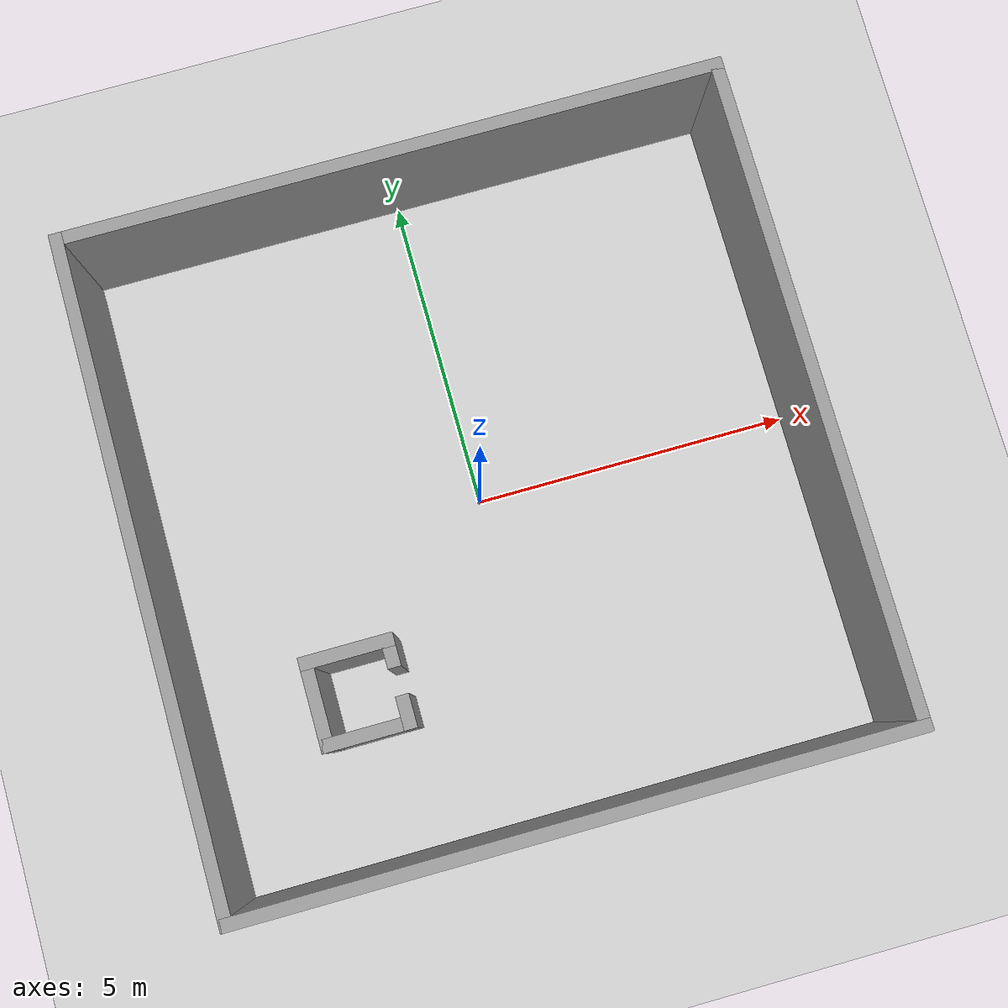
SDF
<?xml version="1.0" ?>
<!-- Reference from https://classic.gazebosim.org/tutorials?tut=guided_i1&cat= -->
<sdf version="1.5">
  <world name="default">

    <!-- A global light source -->
    <include>
      <uri>model://sun</uri>
    </include>

    <!-- A ground plane -->
    <include>
      <uri>model://ground_plane</uri>
    </include>
    <model name="cylinderRobot">
      <!-- Give the base link a unique name -->
      <link name="base">
        <!-- Offset the base by half the lenght of the cylinder -->
        <pose>0 0 0.029335 0 0 0</pose>
        <collision name="base_collision">
          <geometry>
            <cylinder>
              <!-- Radius and length provided by Velodyne -->
              <radius>.04267</radius>
              <length>.05867</length>
            </cylinder>
          </geometry>
        </collision>
        <inertial>
          <mass>1.2</mass>
          <inertia>
            <ixx>0.001087473</ixx>
            <iyy>0.001087473</iyy>
            <izz>0.001092437</izz>
            <ixy>0</ixy>
            <ixz>0</ixz>
            <iyz>0</iyz>
          </inertia>
        </inertial>
        <!-- The visual is mostly a copy of the collision -->
        <visual name="base_visual">
          <geometry>
            <cylinder>
              <radius>.04267</radius>
              <length>.05867</length>
            </cylinder>
          </geometry>
        </visual>
      </link>

      <!-- Give the base link a unique name -->
      <link name="top">

        <!-- Vertically offset the top cylinder by the length of the bottom
            cylinder and half the length of this cylinder. -->
        <pose>0 0 0.095455 0 0 0</pose>
        <collision name="top_collision">
          <geometry>
            <cylinder>
              <!-- Radius and length provided by Velodyne -->
              <radius>0.04267</radius>
              <length>0.07357</length>
            </cylinder>
          </geometry>
        </collision>
        <inertial>
          <mass>0.1</mass>
          <inertia>
            <ixx>0.000090623</ixx>
            <iyy>0.000090623</iyy>
            <izz>0.000091036</izz>
            <ixy>0</ixy>
            <ixz>0</ixz>
            <iyz>0</iyz>
          </inertia>
        </inertial>
        <!-- The visual is mostly a copy of the collision -->
        <visual name="top_visual">
          <geometry>
            <cylinder>
              <radius>0.04267</radius>
              <length>0.07357</length>
            </cylinder>
          </geometry>
        </visual>
        <!-- Add a ray sensor, and give it a name -->
        <sensor type="ray" name="sensor">

          <pose>0 0 0.03779 0 0 0</pose>

          <!-- Enable visualization to see the rays in the GUI -->
          <visualize>true</visualize>

          <!-- Set the update rate of the sensor -->
          <update_rate>10</update_rate>
          <always_on>true</always_on>
          <ray>
	          <noise>
              <type>gaussian</type>
              <mean>0</mean>
              <stddev>0.008</stddev>
            </noise>
            <!-- The scan element contains the horizontal and vertical beams.
                We are leaving out the vertical beams for this tutorial. -->
            <scan>

              <!-- The horizontal beams -->
              <horizontal>
                <!-- The velodyne has 32 beams(samples) -->
                <samples>4</samples>

                <resolution>1</resolution>

                <!-- Minimum angle in radians -->
                <min_angle>0</min_angle>

                <!-- Maximum angle in radians -->
                <max_angle>4.71238898</max_angle>
              </horizontal>
            </scan>

            <!-- Range defines characteristics of an individual beam -->
            <range>

              <!-- Minimum distance of the beam -->
              <min>0.00</min>

              <!-- Maximum distance of the beam -->
              <max>70</max>

              <!-- Linear resolution of the beam -->
              <resolution>0.001</resolution>
            </range>
          </ray>
          <plugin name="gazebo_ros_ray_controller" filename="libgazebo_ros_laser.so">
            <topicName>/robot/observe</topicName>
            <frameName>ray_sensor</frameName>
          </plugin>
        </sensor>
      </link>
      <!-- Each joint must have a unique name -->
      <joint type="revolute" name="joint">

        <!-- Position the joint at the bottom of the top link -->
        <pose>0 0 -0.036785 0 0 0</pose>

        <!-- Use the base link as the parent of the joint -->
        <parent>base</parent>

        <!-- Use the top link as the child of the joint -->
        <child>top</child>

        <!-- The axis defines the joint's degree of freedom -->
        <axis>

          <!-- Revolve around the z-axis -->
          <xyz>0 0 1</xyz>

          <!-- Limit refers to the range of motion of the joint -->
          <limit>˜

            <!-- Use a very large number to indicate a continuous revolution -->
            <lower>-10000000000000000</lower>
            <upper>10000000000000000</upper>
          </limit>
        </axis>
      </joint>
    </model>
    <model name='Room3'>
    <pose frame=''>0.011565 0 0 0 -0 0</pose>
    <link name='Wall_10'>
      <collision name='Wall_10_Collision'>
        <geometry>
          <box>
            <size>1.4 0.2 2.5</size>
          </box>
        </geometry>
        <pose frame=''>0 0 1.25 0 -0 0</pose>
      </collision>
      <visual name='Wall_10_Visual'>
        <pose frame=''>0 0 1.25 0 -0 0</pose>
        <geometry>
          <box>
            <size>1.4 0.2 2.5</size>
          </box>
        </geometry>
        <material>
          <script>
            <uri>file://media/materials/scripts/gazebo.material</uri>
            <name>Gazebo/Grey</name>
          </script>
          <ambient>1 1 1 1</ambient>
        </material>
        <meta>
          <layer>0</layer>
        </meta>
      </visual>
      <pose frame=''>-3.11157 -2.5 0 0 -0 1.5708</pose>
    </link>
    <link name='Wall_11'>
      <collision name='Wall_11_Collision'>
        <geometry>
          <box>
            <size>1.4 0.2 2.5</size>
          </box>
        </geometry>
        <pose frame=''>0 0 1.25 0 -0 0</pose>
      </collision>
      <visual name='Wall_11_Visual'>
        <pose frame=''>0 0 1.25 0 -0 0</pose>
        <geometry>
          <box>
            <size>1.4 0.2 2.5</size>
          </box>
        </geometry>
        <material>
          <script>
            <uri>file://media/materials/scripts/gazebo.material</uri>
            <name>Gazebo/Grey</name>
          </script>
          <ambient>1 1 1 1</ambient>
        </material>
        <meta>
          <layer>0</layer>
        </meta>
      </visual>
      <pose frame=''>-2.51157 -1.9 0 0 -0 0</pose>
    </link>
    <link name='Wall_12'>
      <collision name='Wall_12_Collision'>
        <geometry>
          <box>
            <size>0.5 0.2 2.5</size>
          </box>
        </geometry>
        <pose frame=''>0 0 1.25 0 -0 0</pose>
      </collision>
      <visual name='Wall_12_Visual'>
        <pose frame=''>0 0 1.25 0 -0 0</pose>
        <geometry>
          <box>
            <size>0.5 0.2 2.5</size>
          </box>
        </geometry>
        <material>
          <script>
            <uri>file://media/materials/scripts/gazebo.material</uri>
            <name>Gazebo/Grey</name>
          </script>
          <ambient>1 1 1 1</ambient>
        </material>
        <meta>
          <layer>0</layer>
        </meta>
      </visual>
      <pose frame=''>-1.91156 -2.05 0 0 -0 -1.5708</pose>
    </link>
    <link name='Wall_14'>
      <collision name='Wall_14_Collision'>
        <geometry>
          <box>
            <size>0.5 0.2 2.5</size>
          </box>
        </geometry>
        <pose frame=''>0 0 1.25 0 -0 0</pose>
      </collision>
      <visual name='Wall_14_Visual'>
        <pose frame=''>0 0 1.25 0 -0 0</pose>
        <geometry>
          <box>
            <size>0.5 0.2 2.5</size>
          </box>
        </geometry>
        <material>
          <script>
            <uri>file://media/materials/scripts/gazebo.material</uri>
            <name>Gazebo/Grey</name>
          </script>
          <ambient>1 1 1 1</ambient>
        </material>
        <meta>
          <layer>0</layer>
        </meta>
      </visual>
      <pose frame=''>-1.91156 -2.95 0 0 -0 1.5708</pose>
    </link>
    <link name='Wall_3'>
      <collision name='Wall_3_Collision'>
        <geometry>
          <box>
            <size>10.4 0.2 2.5</size>
          </box>
        </geometry>
        <pose frame=''>0 0 1.25 0 -0 0</pose>
      </collision>
      <visual name='Wall_3_Visual'>
        <pose frame=''>0 0 1.25 0 -0 0</pose>
        <geometry>
          <box>
            <size>10.4 0.2 2.5</size>
          </box>
        </geometry>
        <material>
          <script>
            <uri>file://media/materials/scripts/gazebo.material</uri>
            <name>Gazebo/Grey</name>
          </script>
          <ambient>1 1 1 1</ambient>
        </material>
        <meta>
          <layer>0</layer>
        </meta>
      </visual>
      <pose frame=''>-5.08843 0 0 0 -0 -1.5708</pose>
    </link>
    <link name='Wall_4'>
      <collision name='Wall_4_Collision'>
        <geometry>
          <box>
            <size>10.3537 0.2 2.5</size>
          </box>
        </geometry>
        <pose frame=''>0 0 1.25 0 -0 0</pose>
      </collision>
      <visual name='Wall_4_Visual'>
        <pose frame=''>0 0 1.25 0 -0 0</pose>
        <geometry>
          <box>
            <size>10.3537 0.2 2.5</size>
          </box>
        </geometry>
        <material>
          <script>
            <uri>file://media/materials/scripts/gazebo.material</uri>
            <name>Gazebo/Grey</name>
          </script>
          <ambient>1 1 1 1</ambient>
        </material>
        <meta>
          <layer>0</layer>
        </meta>
      </visual>
      <pose frame=''>0.011565 -5.1 0 0 -0 0</pose>
    </link>
    <link name='Wall_5'>
      <collision name='Wall_5_Collision'>
        <geometry>
          <box>
            <size>10.4 0.2 2.5</size>
          </box>
        </geometry>
        <pose frame=''>0 0 1.25 0 -0 0</pose>
      </collision>
      <visual name='Wall_5_Visual'>
        <pose frame=''>0 0 1.25 0 -0 0</pose>
        <geometry>
          <box>
            <size>10.4 0.2 2.5</size>
          </box>
        </geometry>
        <material>
          <script>
            <uri>file://media/materials/scripts/gazebo.material</uri>
            <name>Gazebo/Grey</name>
          </script>
          <ambient>1 1 1 1</ambient>
        </material>
        <meta>
          <layer>0</layer>
        </meta>
      </visual>
      <pose frame=''>5.08843 0 0 0 -0 1.5708</pose>
    </link>
    <link name='Wall_6'>
      <collision name='Wall_6_Collision'>
        <geometry>
          <box>
            <size>10.3537 0.2 2.5</size>
          </box>
        </geometry>
        <pose frame=''>0 0 1.25 0 -0 0</pose>
      </collision>
      <visual name='Wall_6_Visual'>
        <pose frame=''>0 0 1.25 0 -0 0</pose>
        <geometry>
          <box>
            <size>10.3537 0.2 2.5</size>
          </box>
        </geometry>
        <material>
          <script>
            <uri>file://media/materials/scripts/gazebo.material</uri>
            <name>Gazebo/Grey</name>
          </script>
          <ambient>1 1 1 1</ambient>
        </material>
        <meta>
          <layer>0</layer>
        </meta>
      </visual>
      <pose frame=''>0.011565 5.1 0 0 -0 3.14159</pose>
    </link>
    <link name='Wall_8'>
      <collision name='Wall_8_Collision'>
        <geometry>
          <box>
            <size>1.4 0.2 2.5</size>
          </box>
        </geometry>
        <pose frame=''>0 0 1.25 0 -0 0</pose>
      </collision>
      <visual name='Wall_8_Visual'>
        <pose frame=''>0 0 1.25 0 -0 0</pose>
        <geometry>
          <box>
            <size>1.4 0.2 2.5</size>
          </box>
        </geometry>
        <material>
          <script>
            <uri>file://media/materials/scripts/gazebo.material</uri>
            <name>Gazebo/Grey</name>
          </script>
          <ambient>1 1 1 1</ambient>
        </material>
        <meta>
          <layer>0</layer>
        </meta>
      </visual>
      <pose frame=''>-2.51157 -3.1 0 0 -0 0</pose>
    </link>
    <static>1</static>
  </model>

  </world>
</sdf>
